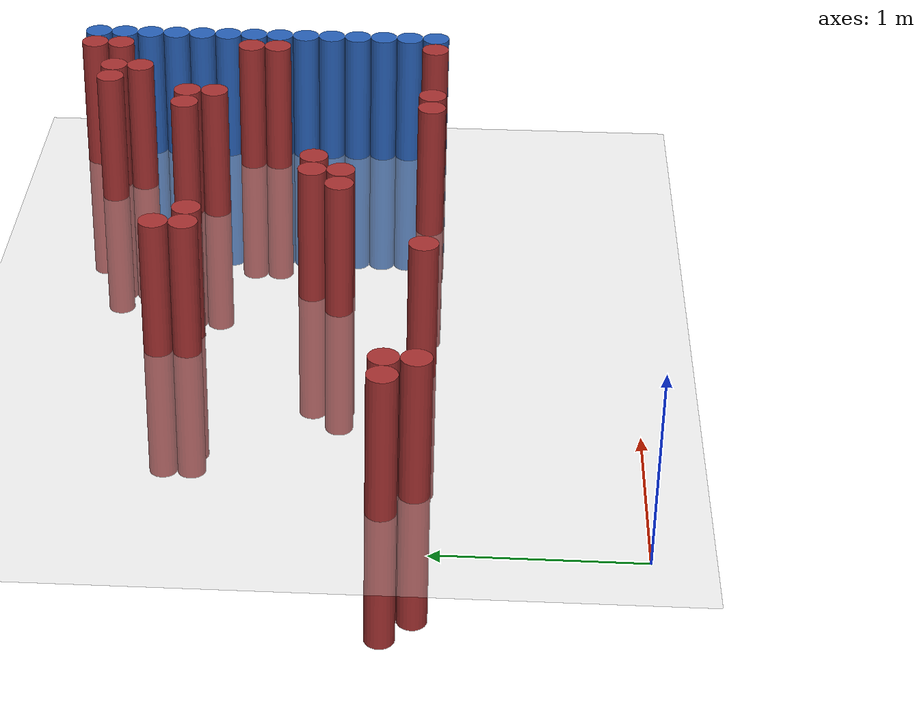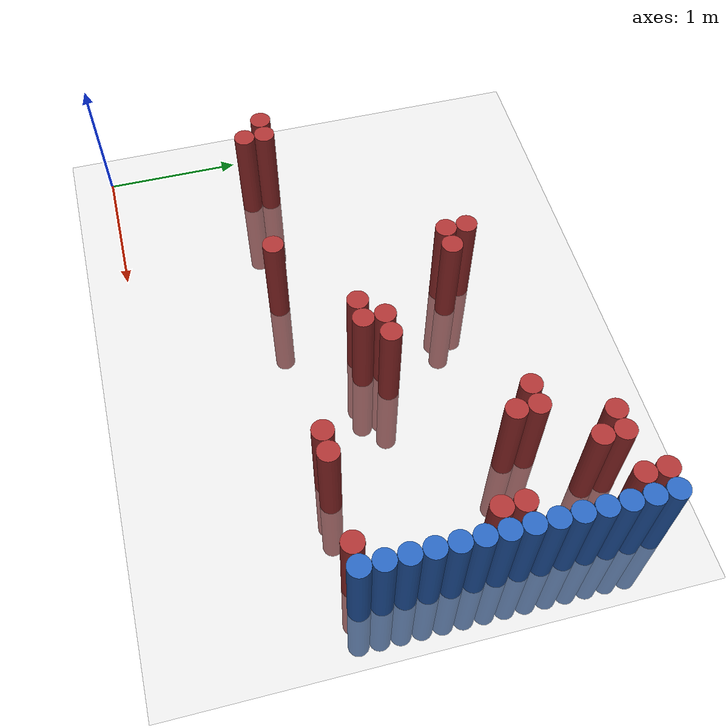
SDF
<sdf version="1.6">
 <world name="default">
  <model name="ground_plane">
   <static>1</static>
   <link name="link">
    <collision name="collision">
     <geometry><plane><normal>0 0 1</normal><size>100 100</size></plane></geometry>
     <surface><friction><ode><mu>100</mu><mu2>50</mu2></ode></friction></surface>
    </collision>
    <visual name="visual">
     <cast_shadows>0</cast_shadows>
     <geometry><plane><normal>0 0 1</normal><size>100 100</size></plane></geometry>
     <material>
      <script><uri>file://media/materials/scripts/gazebo.material</uri><name>Gazebo/Grey</name></script>
     </material>
    </visual>
   </link>
  </model>
  <model name="unit_cylinder_130">
   <static>1</static>
   <pose>3.925000 1.225000 0.000000 0.000000 0.000000 0.000000</pose>
   <link name="link">
    <inertial>
     <mass>1</mass>
     <inertia><ixx>0.145833</ixx><ixy>0</ixy><ixz>0</ixz><iyy>0.145833</iyy><iyz>0</iyz><izz>0.125</izz></inertia>
    </inertial>
    <collision name="collision">
     <geometry><cylinder><radius>0.075000</radius><length>1.5</length></cylinder></geometry>
    </collision>
    <visual name="visual">
     <geometry><cylinder><radius>0.075000</radius><length>1.5</length></cylinder></geometry>
     <material>
      <ambient>0.152000 0.379000 0.720000 1</ambient>
      <diffuse>0.152000 0.379000 0.720000 1</diffuse>
     </material>
     <material>
      <script><name>Gazebo/Grey</name><uri>file://media/materials/scripts/gazebo.material</uri></script>
     </material>
    </visual>
   </link>
  </model>
  <model name="unit_cylinder_132">
   <static>1</static>
   <pose>3.925000 1.375000 0.000000 0.000000 0.000000 0.000000</pose>
   <link name="link">
    <inertial>
     <mass>1</mass>
     <inertia><ixx>0.145833</ixx><ixy>0</ixy><ixz>0</ixz><iyy>0.145833</iyy><iyz>0</iyz><izz>0.125</izz></inertia>
    </inertial>
    <collision name="collision">
     <geometry><cylinder><radius>0.075000</radius><length>1.5</length></cylinder></geometry>
    </collision>
    <visual name="visual">
     <geometry><cylinder><radius>0.075000</radius><length>1.5</length></cylinder></geometry>
     <material>
      <ambient>0.152000 0.379000 0.720000 1</ambient>
      <diffuse>0.152000 0.379000 0.720000 1</diffuse>
     </material>
     <material>
      <script><name>Gazebo/Grey</name><uri>file://media/materials/scripts/gazebo.material</uri></script>
     </material>
    </visual>
   </link>
  </model>
  <model name="unit_cylinder_134">
   <static>1</static>
   <pose>3.925000 1.525000 0.000000 0.000000 0.000000 0.000000</pose>
   <link name="link">
    <inertial>
     <mass>1</mass>
     <inertia><ixx>0.145833</ixx><ixy>0</ixy><ixz>0</ixz><iyy>0.145833</iyy><iyz>0</iyz><izz>0.125</izz></inertia>
    </inertial>
    <collision name="collision">
     <geometry><cylinder><radius>0.075000</radius><length>1.5</length></cylinder></geometry>
    </collision>
    <visual name="visual">
     <geometry><cylinder><radius>0.075000</radius><length>1.5</length></cylinder></geometry>
     <material>
      <ambient>0.152000 0.379000 0.720000 1</ambient>
      <diffuse>0.152000 0.379000 0.720000 1</diffuse>
     </material>
     <material>
      <script><name>Gazebo/Grey</name><uri>file://media/materials/scripts/gazebo.material</uri></script>
     </material>
    </visual>
   </link>
  </model>
  <model name="unit_cylinder_136">
   <static>1</static>
   <pose>3.925000 1.675000 0.000000 0.000000 0.000000 0.000000</pose>
   <link name="link">
    <inertial>
     <mass>1</mass>
     <inertia><ixx>0.145833</ixx><ixy>0</ixy><ixz>0</ixz><iyy>0.145833</iyy><iyz>0</iyz><izz>0.125</izz></inertia>
    </inertial>
    <collision name="collision">
     <geometry><cylinder><radius>0.075000</radius><length>1.5</length></cylinder></geometry>
    </collision>
    <visual name="visual">
     <geometry><cylinder><radius>0.075000</radius><length>1.5</length></cylinder></geometry>
     <material>
      <ambient>0.152000 0.379000 0.720000 1</ambient>
      <diffuse>0.152000 0.379000 0.720000 1</diffuse>
     </material>
     <material>
      <script><name>Gazebo/Grey</name><uri>file://media/materials/scripts/gazebo.material</uri></script>
     </material>
    </visual>
   </link>
  </model>
  <model name="unit_cylinder_138">
   <static>1</static>
   <pose>3.925000 1.825000 0.000000 0.000000 0.000000 0.000000</pose>
   <link name="link">
    <inertial>
     <mass>1</mass>
     <inertia><ixx>0.145833</ixx><ixy>0</ixy><ixz>0</ixz><iyy>0.145833</iyy><iyz>0</iyz><izz>0.125</izz></inertia>
    </inertial>
    <collision name="collision">
     <geometry><cylinder><radius>0.075000</radius><length>1.5</length></cylinder></geometry>
    </collision>
    <visual name="visual">
     <geometry><cylinder><radius>0.075000</radius><length>1.5</length></cylinder></geometry>
     <material>
      <ambient>0.152000 0.379000 0.720000 1</ambient>
      <diffuse>0.152000 0.379000 0.720000 1</diffuse>
     </material>
     <material>
      <script><name>Gazebo/Grey</name><uri>file://media/materials/scripts/gazebo.material</uri></script>
     </material>
    </visual>
   </link>
  </model>
  <model name="unit_cylinder_140">
   <static>1</static>
   <pose>3.925000 1.975000 0.000000 0.000000 0.000000 0.000000</pose>
   <link name="link">
    <inertial>
     <mass>1</mass>
     <inertia><ixx>0.145833</ixx><ixy>0</ixy><ixz>0</ixz><iyy>0.145833</iyy><iyz>0</iyz><izz>0.125</izz></inertia>
    </inertial>
    <collision name="collision">
     <geometry><cylinder><radius>0.075000</radius><length>1.5</length></cylinder></geometry>
    </collision>
    <visual name="visual">
     <geometry><cylinder><radius>0.075000</radius><length>1.5</length></cylinder></geometry>
     <material>
      <ambient>0.152000 0.379000 0.720000 1</ambient>
      <diffuse>0.152000 0.379000 0.720000 1</diffuse>
     </material>
     <material>
      <script><name>Gazebo/Grey</name><uri>file://media/materials/scripts/gazebo.material</uri></script>
     </material>
    </visual>
   </link>
  </model>
  <model name="unit_cylinder_142">
   <static>1</static>
   <pose>3.925000 2.125000 0.000000 0.000000 0.000000 0.000000</pose>
   <link name="link">
    <inertial>
     <mass>1</mass>
     <inertia><ixx>0.145833</ixx><ixy>0</ixy><ixz>0</ixz><iyy>0.145833</iyy><iyz>0</iyz><izz>0.125</izz></inertia>
    </inertial>
    <collision name="collision">
     <geometry><cylinder><radius>0.075000</radius><length>1.5</length></cylinder></geometry>
    </collision>
    <visual name="visual">
     <geometry><cylinder><radius>0.075000</radius><length>1.5</length></cylinder></geometry>
     <material>
      <ambient>0.152000 0.379000 0.720000 1</ambient>
      <diffuse>0.152000 0.379000 0.720000 1</diffuse>
     </material>
     <material>
      <script><name>Gazebo/Grey</name><uri>file://media/materials/scripts/gazebo.material</uri></script>
     </material>
    </visual>
   </link>
  </model>
  <model name="unit_cylinder_144">
   <static>1</static>
   <pose>3.925000 2.275000 0.000000 0.000000 0.000000 0.000000</pose>
   <link name="link">
    <inertial>
     <mass>1</mass>
     <inertia><ixx>0.145833</ixx><ixy>0</ixy><ixz>0</ixz><iyy>0.145833</iyy><iyz>0</iyz><izz>0.125</izz></inertia>
    </inertial>
    <collision name="collision">
     <geometry><cylinder><radius>0.075000</radius><length>1.5</length></cylinder></geometry>
    </collision>
    <visual name="visual">
     <geometry><cylinder><radius>0.075000</radius><length>1.5</length></cylinder></geometry>
     <material>
      <ambient>0.152000 0.379000 0.720000 1</ambient>
      <diffuse>0.152000 0.379000 0.720000 1</diffuse>
     </material>
     <material>
      <script><name>Gazebo/Grey</name><uri>file://media/materials/scripts/gazebo.material</uri></script>
     </material>
    </visual>
   </link>
  </model>
  <model name="unit_cylinder_146">
   <static>1</static>
   <pose>3.925000 2.425000 0.000000 0.000000 0.000000 0.000000</pose>
   <link name="link">
    <inertial>
     <mass>1</mass>
     <inertia><ixx>0.145833</ixx><ixy>0</ixy><ixz>0</ixz><iyy>0.145833</iyy><iyz>0</iyz><izz>0.125</izz></inertia>
    </inertial>
    <collision name="collision">
     <geometry><cylinder><radius>0.075000</radius><length>1.5</length></cylinder></geometry>
    </collision>
    <visual name="visual">
     <geometry><cylinder><radius>0.075000</radius><length>1.5</length></cylinder></geometry>
     <material>
      <ambient>0.152000 0.379000 0.720000 1</ambient>
      <diffuse>0.152000 0.379000 0.720000 1</diffuse>
     </material>
     <material>
      <script><name>Gazebo/Grey</name><uri>file://media/materials/scripts/gazebo.material</uri></script>
     </material>
    </visual>
   </link>
  </model>
  <model name="unit_cylinder_148">
   <static>1</static>
   <pose>3.925000 2.575000 0.000000 0.000000 0.000000 0.000000</pose>
   <link name="link">
    <inertial>
     <mass>1</mass>
     <inertia><ixx>0.145833</ixx><ixy>0</ixy><ixz>0</ixz><iyy>0.145833</iyy><iyz>0</iyz><izz>0.125</izz></inertia>
    </inertial>
    <collision name="collision">
     <geometry><cylinder><radius>0.075000</radius><length>1.5</length></cylinder></geometry>
    </collision>
    <visual name="visual">
     <geometry><cylinder><radius>0.075000</radius><length>1.5</length></cylinder></geometry>
     <material>
      <ambient>0.152000 0.379000 0.720000 1</ambient>
      <diffuse>0.152000 0.379000 0.720000 1</diffuse>
     </material>
     <material>
      <script><name>Gazebo/Grey</name><uri>file://media/materials/scripts/gazebo.material</uri></script>
     </material>
    </visual>
   </link>
  </model>
  <model name="unit_cylinder_150">
   <static>1</static>
   <pose>3.925000 2.725000 0.000000 0.000000 0.000000 0.000000</pose>
   <link name="link">
    <inertial>
     <mass>1</mass>
     <inertia><ixx>0.145833</ixx><ixy>0</ixy><ixz>0</ixz><iyy>0.145833</iyy><iyz>0</iyz><izz>0.125</izz></inertia>
    </inertial>
    <collision name="collision">
     <geometry><cylinder><radius>0.075000</radius><length>1.5</length></cylinder></geometry>
    </collision>
    <visual name="visual">
     <geometry><cylinder><radius>0.075000</radius><length>1.5</length></cylinder></geometry>
     <material>
      <ambient>0.152000 0.379000 0.720000 1</ambient>
      <diffuse>0.152000 0.379000 0.720000 1</diffuse>
     </material>
     <material>
      <script><name>Gazebo/Grey</name><uri>file://media/materials/scripts/gazebo.material</uri></script>
     </material>
    </visual>
   </link>
  </model>
  <model name="unit_cylinder_152">
   <static>1</static>
   <pose>3.925000 2.875000 0.000000 0.000000 0.000000 0.000000</pose>
   <link name="link">
    <inertial>
     <mass>1</mass>
     <inertia><ixx>0.145833</ixx><ixy>0</ixy><ixz>0</ixz><iyy>0.145833</iyy><iyz>0</iyz><izz>0.125</izz></inertia>
    </inertial>
    <collision name="collision">
     <geometry><cylinder><radius>0.075000</radius><length>1.5</length></cylinder></geometry>
    </collision>
    <visual name="visual">
     <geometry><cylinder><radius>0.075000</radius><length>1.5</length></cylinder></geometry>
     <material>
      <ambient>0.152000 0.379000 0.720000 1</ambient>
      <diffuse>0.152000 0.379000 0.720000 1</diffuse>
     </material>
     <material>
      <script><name>Gazebo/Grey</name><uri>file://media/materials/scripts/gazebo.material</uri></script>
     </material>
    </visual>
   </link>
  </model>
  <model name="unit_cylinder_154">
   <static>1</static>
   <pose>3.925000 3.025000 0.000000 0.000000 0.000000 0.000000</pose>
   <link name="link">
    <inertial>
     <mass>1</mass>
     <inertia><ixx>0.145833</ixx><ixy>0</ixy><ixz>0</ixz><iyy>0.145833</iyy><iyz>0</iyz><izz>0.125</izz></inertia>
    </inertial>
    <collision name="collision">
     <geometry><cylinder><radius>0.075000</radius><length>1.5</length></cylinder></geometry>
    </collision>
    <visual name="visual">
     <geometry><cylinder><radius>0.075000</radius><length>1.5</length></cylinder></geometry>
     <material>
      <ambient>0.152000 0.379000 0.720000 1</ambient>
      <diffuse>0.152000 0.379000 0.720000 1</diffuse>
     </material>
     <material>
      <script><name>Gazebo/Grey</name><uri>file://media/materials/scripts/gazebo.material</uri></script>
     </material>
    </visual>
   </link>
  </model>
  <model name="unit_cylinder_358">
   <static>1</static>
   <pose>0.325000 1.225000 0.000000 0.000000 0.000000 0.000000</pose>
   <link name="link">
    <inertial>
     <mass>1</mass>
     <inertia><ixx>0.145833</ixx><ixy>0</ixy><ixz>0</ixz><iyy>0.145833</iyy><iyz>0</iyz><izz>0.125</izz></inertia>
    </inertial>
    <collision name="collision">
     <geometry><cylinder><radius>0.075000</radius><length>1.5</length></cylinder></geometry>
    </collision>
    <visual name="visual">
     <geometry><cylinder><radius>0.075000</radius><length>1.5</length></cylinder></geometry>
     <material>
      <ambient>0.648000 0.192000 0.192000 1</ambient>
      <diffuse>0.648000 0.192000 0.192000 1</diffuse>
     </material>
     <material>
      <script><name>Gazebo/Grey</name><uri>file://media/materials/scripts/gazebo.material</uri></script>
     </material>
    </visual>
   </link>
  </model>
  <model name="unit_cylinder_361">
   <static>1</static>
   <pose>0.475000 1.075000 0.000000 0.000000 0.000000 0.000000</pose>
   <link name="link">
    <inertial>
     <mass>1</mass>
     <inertia><ixx>0.145833</ixx><ixy>0</ixy><ixz>0</ixz><iyy>0.145833</iyy><iyz>0</iyz><izz>0.125</izz></inertia>
    </inertial>
    <collision name="collision">
     <geometry><cylinder><radius>0.075000</radius><length>1.5</length></cylinder></geometry>
    </collision>
    <visual name="visual">
     <geometry><cylinder><radius>0.075000</radius><length>1.5</length></cylinder></geometry>
     <material>
      <ambient>0.648000 0.192000 0.192000 1</ambient>
      <diffuse>0.648000 0.192000 0.192000 1</diffuse>
     </material>
     <material>
      <script><name>Gazebo/Grey</name><uri>file://media/materials/scripts/gazebo.material</uri></script>
     </material>
    </visual>
   </link>
  </model>
  <model name="unit_cylinder_362">
   <static>1</static>
   <pose>0.475000 1.225000 0.000000 0.000000 0.000000 0.000000</pose>
   <link name="link">
    <inertial>
     <mass>1</mass>
     <inertia><ixx>0.145833</ixx><ixy>0</ixy><ixz>0</ixz><iyy>0.145833</iyy><iyz>0</iyz><izz>0.125</izz></inertia>
    </inertial>
    <collision name="collision">
     <geometry><cylinder><radius>0.075000</radius><length>1.5</length></cylinder></geometry>
    </collision>
    <visual name="visual">
     <geometry><cylinder><radius>0.075000</radius><length>1.5</length></cylinder></geometry>
     <material>
      <ambient>0.648000 0.192000 0.192000 1</ambient>
      <diffuse>0.648000 0.192000 0.192000 1</diffuse>
     </material>
     <material>
      <script><name>Gazebo/Grey</name><uri>file://media/materials/scripts/gazebo.material</uri></script>
     </material>
    </visual>
   </link>
  </model>
  <model name="unit_cylinder_374">
   <static>1</static>
   <pose>1.525000 1.075000 0.000000 0.000000 0.000000 0.000000</pose>
   <link name="link">
    <inertial>
     <mass>1</mass>
     <inertia><ixx>0.145833</ixx><ixy>0</ixy><ixz>0</ixz><iyy>0.145833</iyy><iyz>0</iyz><izz>0.125</izz></inertia>
    </inertial>
    <collision name="collision">
     <geometry><cylinder><radius>0.075000</radius><length>1.5</length></cylinder></geometry>
    </collision>
    <visual name="visual">
     <geometry><cylinder><radius>0.075000</radius><length>1.5</length></cylinder></geometry>
     <material>
      <ambient>0.648000 0.192000 0.192000 1</ambient>
      <diffuse>0.648000 0.192000 0.192000 1</diffuse>
     </material>
     <material>
      <script><name>Gazebo/Grey</name><uri>file://media/materials/scripts/gazebo.material</uri></script>
     </material>
    </visual>
   </link>
  </model>
  <model name="unit_cylinder_378">
   <static>1</static>
   <pose>1.675000 2.275000 0.000000 0.000000 0.000000 0.000000</pose>
   <link name="link">
    <inertial>
     <mass>1</mass>
     <inertia><ixx>0.145833</ixx><ixy>0</ixy><ixz>0</ixz><iyy>0.145833</iyy><iyz>0</iyz><izz>0.125</izz></inertia>
    </inertial>
    <collision name="collision">
     <geometry><cylinder><radius>0.075000</radius><length>1.5</length></cylinder></geometry>
    </collision>
    <visual name="visual">
     <geometry><cylinder><radius>0.075000</radius><length>1.5</length></cylinder></geometry>
     <material>
      <ambient>0.648000 0.192000 0.192000 1</ambient>
      <diffuse>0.648000 0.192000 0.192000 1</diffuse>
     </material>
     <material>
      <script><name>Gazebo/Grey</name><uri>file://media/materials/scripts/gazebo.material</uri></script>
     </material>
    </visual>
   </link>
  </model>
  <model name="unit_cylinder_379">
   <static>1</static>
   <pose>1.675000 2.425000 0.000000 0.000000 0.000000 0.000000</pose>
   <link name="link">
    <inertial>
     <mass>1</mass>
     <inertia><ixx>0.145833</ixx><ixy>0</ixy><ixz>0</ixz><iyy>0.145833</iyy><iyz>0</iyz><izz>0.125</izz></inertia>
    </inertial>
    <collision name="collision">
     <geometry><cylinder><radius>0.075000</radius><length>1.5</length></cylinder></geometry>
    </collision>
    <visual name="visual">
     <geometry><cylinder><radius>0.075000</radius><length>1.5</length></cylinder></geometry>
     <material>
      <ambient>0.648000 0.192000 0.192000 1</ambient>
      <diffuse>0.648000 0.192000 0.192000 1</diffuse>
     </material>
     <material>
      <script><name>Gazebo/Grey</name><uri>file://media/materials/scripts/gazebo.material</uri></script>
     </material>
    </visual>
   </link>
  </model>
  <model name="unit_cylinder_381">
   <static>1</static>
   <pose>1.825000 2.275000 0.000000 0.000000 0.000000 0.000000</pose>
   <link name="link">
    <inertial>
     <mass>1</mass>
     <inertia><ixx>0.145833</ixx><ixy>0</ixy><ixz>0</ixz><iyy>0.145833</iyy><iyz>0</iyz><izz>0.125</izz></inertia>
    </inertial>
    <collision name="collision">
     <geometry><cylinder><radius>0.075000</radius><length>1.5</length></cylinder></geometry>
    </collision>
    <visual name="visual">
     <geometry><cylinder><radius>0.075000</radius><length>1.5</length></cylinder></geometry>
     <material>
      <ambient>0.648000 0.192000 0.192000 1</ambient>
      <diffuse>0.648000 0.192000 0.192000 1</diffuse>
     </material>
     <material>
      <script><name>Gazebo/Grey</name><uri>file://media/materials/scripts/gazebo.material</uri></script>
     </material>
    </visual>
   </link>
  </model>
  <model name="unit_cylinder_382">
   <static>1</static>
   <pose>2.125000 1.525000 0.000000 0.000000 0.000000 0.000000</pose>
   <link name="link">
    <inertial>
     <mass>1</mass>
     <inertia><ixx>0.145833</ixx><ixy>0</ixy><ixz>0</ixz><iyy>0.145833</iyy><iyz>0</iyz><izz>0.125</izz></inertia>
    </inertial>
    <collision name="collision">
     <geometry><cylinder><radius>0.075000</radius><length>1.5</length></cylinder></geometry>
    </collision>
    <visual name="visual">
     <geometry><cylinder><radius>0.075000</radius><length>1.5</length></cylinder></geometry>
     <material>
      <ambient>0.648000 0.192000 0.192000 1</ambient>
      <diffuse>0.648000 0.192000 0.192000 1</diffuse>
     </material>
     <material>
      <script><name>Gazebo/Grey</name><uri>file://media/materials/scripts/gazebo.material</uri></script>
     </material>
    </visual>
   </link>
  </model>
  <model name="unit_cylinder_384">
   <static>1</static>
   <pose>2.275000 1.525000 0.000000 0.000000 0.000000 0.000000</pose>
   <link name="link">
    <inertial>
     <mass>1</mass>
     <inertia><ixx>0.145833</ixx><ixy>0</ixy><ixz>0</ixz><iyy>0.145833</iyy><iyz>0</iyz><izz>0.125</izz></inertia>
    </inertial>
    <collision name="collision">
     <geometry><cylinder><radius>0.075000</radius><length>1.5</length></cylinder></geometry>
    </collision>
    <visual name="visual">
     <geometry><cylinder><radius>0.075000</radius><length>1.5</length></cylinder></geometry>
     <material>
      <ambient>0.648000 0.192000 0.192000 1</ambient>
      <diffuse>0.648000 0.192000 0.192000 1</diffuse>
     </material>
     <material>
      <script><name>Gazebo/Grey</name><uri>file://media/materials/scripts/gazebo.material</uri></script>
     </material>
    </visual>
   </link>
  </model>
  <model name="unit_cylinder_385">
   <static>1</static>
   <pose>2.275000 1.675000 0.000000 0.000000 0.000000 0.000000</pose>
   <link name="link">
    <inertial>
     <mass>1</mass>
     <inertia><ixx>0.145833</ixx><ixy>0</ixy><ixz>0</ixz><iyy>0.145833</iyy><iyz>0</iyz><izz>0.125</izz></inertia>
    </inertial>
    <collision name="collision">
     <geometry><cylinder><radius>0.075000</radius><length>1.5</length></cylinder></geometry>
    </collision>
    <visual name="visual">
     <geometry><cylinder><radius>0.075000</radius><length>1.5</length></cylinder></geometry>
     <material>
      <ambient>0.648000 0.192000 0.192000 1</ambient>
      <diffuse>0.648000 0.192000 0.192000 1</diffuse>
     </material>
     <material>
      <script><name>Gazebo/Grey</name><uri>file://media/materials/scripts/gazebo.material</uri></script>
     </material>
    </visual>
   </link>
  </model>
  <model name="unit_cylinder_389">
   <static>1</static>
   <pose>2.425000 1.675000 0.000000 0.000000 0.000000 0.000000</pose>
   <link name="link">
    <inertial>
     <mass>1</mass>
     <inertia><ixx>0.145833</ixx><ixy>0</ixy><ixz>0</ixz><iyy>0.145833</iyy><iyz>0</iyz><izz>0.125</izz></inertia>
    </inertial>
    <collision name="collision">
     <geometry><cylinder><radius>0.075000</radius><length>1.5</length></cylinder></geometry>
    </collision>
    <visual name="visual">
     <geometry><cylinder><radius>0.075000</radius><length>1.5</length></cylinder></geometry>
     <material>
      <ambient>0.648000 0.192000 0.192000 1</ambient>
      <diffuse>0.648000 0.192000 0.192000 1</diffuse>
     </material>
     <material>
      <script><name>Gazebo/Grey</name><uri>file://media/materials/scripts/gazebo.material</uri></script>
     </material>
    </visual>
   </link>
  </model>
  <model name="unit_cylinder_398">
   <static>1</static>
   <pose>3.025000 1.075000 0.000000 0.000000 0.000000 0.000000</pose>
   <link name="link">
    <inertial>
     <mass>1</mass>
     <inertia><ixx>0.145833</ixx><ixy>0</ixy><ixz>0</ixz><iyy>0.145833</iyy><iyz>0</iyz><izz>0.125</izz></inertia>
    </inertial>
    <collision name="collision">
     <geometry><cylinder><radius>0.075000</radius><length>1.5</length></cylinder></geometry>
    </collision>
    <visual name="visual">
     <geometry><cylinder><radius>0.075000</radius><length>1.5</length></cylinder></geometry>
     <material>
      <ambient>0.648000 0.192000 0.192000 1</ambient>
      <diffuse>0.648000 0.192000 0.192000 1</diffuse>
     </material>
     <material>
      <script><name>Gazebo/Grey</name><uri>file://media/materials/scripts/gazebo.material</uri></script>
     </material>
    </visual>
   </link>
  </model>
  <model name="unit_cylinder_399">
   <static>1</static>
   <pose>3.025000 2.425000 0.000000 0.000000 0.000000 0.000000</pose>
   <link name="link">
    <inertial>
     <mass>1</mass>
     <inertia><ixx>0.145833</ixx><ixy>0</ixy><ixz>0</ixz><iyy>0.145833</iyy><iyz>0</iyz><izz>0.125</izz></inertia>
    </inertial>
    <collision name="collision">
     <geometry><cylinder><radius>0.075000</radius><length>1.5</length></cylinder></geometry>
    </collision>
    <visual name="visual">
     <geometry><cylinder><radius>0.075000</radius><length>1.5</length></cylinder></geometry>
     <material>
      <ambient>0.648000 0.192000 0.192000 1</ambient>
      <diffuse>0.648000 0.192000 0.192000 1</diffuse>
     </material>
     <material>
      <script><name>Gazebo/Grey</name><uri>file://media/materials/scripts/gazebo.material</uri></script>
     </material>
    </visual>
   </link>
  </model>
  <model name="unit_cylinder_403">
   <static>1</static>
   <pose>3.175000 1.075000 0.000000 0.000000 0.000000 0.000000</pose>
   <link name="link">
    <inertial>
     <mass>1</mass>
     <inertia><ixx>0.145833</ixx><ixy>0</ixy><ixz>0</ixz><iyy>0.145833</iyy><iyz>0</iyz><izz>0.125</izz></inertia>
    </inertial>
    <collision name="collision">
     <geometry><cylinder><radius>0.075000</radius><length>1.5</length></cylinder></geometry>
    </collision>
    <visual name="visual">
     <geometry><cylinder><radius>0.075000</radius><length>1.5</length></cylinder></geometry>
     <material>
      <ambient>0.648000 0.192000 0.192000 1</ambient>
      <diffuse>0.648000 0.192000 0.192000 1</diffuse>
     </material>
     <material>
      <script><name>Gazebo/Grey</name><uri>file://media/materials/scripts/gazebo.material</uri></script>
     </material>
    </visual>
   </link>
  </model>
  <model name="unit_cylinder_404">
   <static>1</static>
   <pose>3.175000 2.275000 0.000000 0.000000 0.000000 0.000000</pose>
   <link name="link">
    <inertial>
     <mass>1</mass>
     <inertia><ixx>0.145833</ixx><ixy>0</ixy><ixz>0</ixz><iyy>0.145833</iyy><iyz>0</iyz><izz>0.125</izz></inertia>
    </inertial>
    <collision name="collision">
     <geometry><cylinder><radius>0.075000</radius><length>1.5</length></cylinder></geometry>
    </collision>
    <visual name="visual">
     <geometry><cylinder><radius>0.075000</radius><length>1.5</length></cylinder></geometry>
     <material>
      <ambient>0.648000 0.192000 0.192000 1</ambient>
      <diffuse>0.648000 0.192000 0.192000 1</diffuse>
     </material>
     <material>
      <script><name>Gazebo/Grey</name><uri>file://media/materials/scripts/gazebo.material</uri></script>
     </material>
    </visual>
   </link>
  </model>
  <model name="unit_cylinder_405">
   <static>1</static>
   <pose>3.175000 2.425000 0.000000 0.000000 0.000000 0.000000</pose>
   <link name="link">
    <inertial>
     <mass>1</mass>
     <inertia><ixx>0.145833</ixx><ixy>0</ixy><ixz>0</ixz><iyy>0.145833</iyy><iyz>0</iyz><izz>0.125</izz></inertia>
    </inertial>
    <collision name="collision">
     <geometry><cylinder><radius>0.075000</radius><length>1.5</length></cylinder></geometry>
    </collision>
    <visual name="visual">
     <geometry><cylinder><radius>0.075000</radius><length>1.5</length></cylinder></geometry>
     <material>
      <ambient>0.648000 0.192000 0.192000 1</ambient>
      <diffuse>0.648000 0.192000 0.192000 1</diffuse>
     </material>
     <material>
      <script><name>Gazebo/Grey</name><uri>file://media/materials/scripts/gazebo.material</uri></script>
     </material>
    </visual>
   </link>
  </model>
  <model name="unit_cylinder_408">
   <static>1</static>
   <pose>3.325000 2.875000 0.000000 0.000000 0.000000 0.000000</pose>
   <link name="link">
    <inertial>
     <mass>1</mass>
     <inertia><ixx>0.145833</ixx><ixy>0</ixy><ixz>0</ixz><iyy>0.145833</iyy><iyz>0</iyz><izz>0.125</izz></inertia>
    </inertial>
    <collision name="collision">
     <geometry><cylinder><radius>0.075000</radius><length>1.5</length></cylinder></geometry>
    </collision>
    <visual name="visual">
     <geometry><cylinder><radius>0.075000</radius><length>1.5</length></cylinder></geometry>
     <material>
      <ambient>0.648000 0.192000 0.192000 1</ambient>
      <diffuse>0.648000 0.192000 0.192000 1</diffuse>
     </material>
     <material>
      <script><name>Gazebo/Grey</name><uri>file://media/materials/scripts/gazebo.material</uri></script>
     </material>
    </visual>
   </link>
  </model>
  <model name="unit_cylinder_413">
   <static>1</static>
   <pose>3.475000 2.725000 0.000000 0.000000 0.000000 0.000000</pose>
   <link name="link">
    <inertial>
     <mass>1</mass>
     <inertia><ixx>0.145833</ixx><ixy>0</ixy><ixz>0</ixz><iyy>0.145833</iyy><iyz>0</iyz><izz>0.125</izz></inertia>
    </inertial>
    <collision name="collision">
     <geometry><cylinder><radius>0.075000</radius><length>1.5</length></cylinder></geometry>
    </collision>
    <visual name="visual">
     <geometry><cylinder><radius>0.075000</radius><length>1.5</length></cylinder></geometry>
     <material>
      <ambient>0.648000 0.192000 0.192000 1</ambient>
      <diffuse>0.648000 0.192000 0.192000 1</diffuse>
     </material>
     <material>
      <script><name>Gazebo/Grey</name><uri>file://media/materials/scripts/gazebo.material</uri></script>
     </material>
    </visual>
   </link>
  </model>
  <model name="unit_cylinder_414">
   <static>1</static>
   <pose>3.475000 2.875000 0.000000 0.000000 0.000000 0.000000</pose>
   <link name="link">
    <inertial>
     <mass>1</mass>
     <inertia><ixx>0.145833</ixx><ixy>0</ixy><ixz>0</ixz><iyy>0.145833</iyy><iyz>0</iyz><izz>0.125</izz></inertia>
    </inertial>
    <collision name="collision">
     <geometry><cylinder><radius>0.075000</radius><length>1.5</length></cylinder></geometry>
    </collision>
    <visual name="visual">
     <geometry><cylinder><radius>0.075000</radius><length>1.5</length></cylinder></geometry>
     <material>
      <ambient>0.648000 0.192000 0.192000 1</ambient>
      <diffuse>0.648000 0.192000 0.192000 1</diffuse>
     </material>
     <material>
      <script><name>Gazebo/Grey</name><uri>file://media/materials/scripts/gazebo.material</uri></script>
     </material>
    </visual>
   </link>
  </model>
  <model name="unit_cylinder_431">
   <static>1</static>
   <pose>3.775000 1.075000 0.000000 0.000000 0.000000 0.000000</pose>
   <link name="link">
    <inertial>
     <mass>1</mass>
     <inertia><ixx>0.145833</ixx><ixy>0</ixy><ixz>0</ixz><iyy>0.145833</iyy><iyz>0</iyz><izz>0.125</izz></inertia>
    </inertial>
    <collision name="collision">
     <geometry><cylinder><radius>0.075000</radius><length>1.5</length></cylinder></geometry>
    </collision>
    <visual name="visual">
     <geometry><cylinder><radius>0.075000</radius><length>1.5</length></cylinder></geometry>
     <material>
      <ambient>0.648000 0.192000 0.192000 1</ambient>
      <diffuse>0.648000 0.192000 0.192000 1</diffuse>
     </material>
     <material>
      <script><name>Gazebo/Grey</name><uri>file://media/materials/scripts/gazebo.material</uri></script>
     </material>
    </visual>
   </link>
  </model>
  <model name="unit_cylinder_432">
   <static>1</static>
   <pose>3.775000 1.975000 0.000000 0.000000 0.000000 0.000000</pose>
   <link name="link">
    <inertial>
     <mass>1</mass>
     <inertia><ixx>0.145833</ixx><ixy>0</ixy><ixz>0</ixz><iyy>0.145833</iyy><iyz>0</iyz><izz>0.125</izz></inertia>
    </inertial>
    <collision name="collision">
     <geometry><cylinder><radius>0.075000</radius><length>1.5</length></cylinder></geometry>
    </collision>
    <visual name="visual">
     <geometry><cylinder><radius>0.075000</radius><length>1.5</length></cylinder></geometry>
     <material>
      <ambient>0.648000 0.192000 0.192000 1</ambient>
      <diffuse>0.648000 0.192000 0.192000 1</diffuse>
     </material>
     <material>
      <script><name>Gazebo/Grey</name><uri>file://media/materials/scripts/gazebo.material</uri></script>
     </material>
    </visual>
   </link>
  </model>
  <model name="unit_cylinder_433">
   <static>1</static>
   <pose>3.775000 2.125000 0.000000 0.000000 0.000000 0.000000</pose>
   <link name="link">
    <inertial>
     <mass>1</mass>
     <inertia><ixx>0.145833</ixx><ixy>0</ixy><ixz>0</ixz><iyy>0.145833</iyy><iyz>0</iyz><izz>0.125</izz></inertia>
    </inertial>
    <collision name="collision">
     <geometry><cylinder><radius>0.075000</radius><length>1.5</length></cylinder></geometry>
    </collision>
    <visual name="visual">
     <geometry><cylinder><radius>0.075000</radius><length>1.5</length></cylinder></geometry>
     <material>
      <ambient>0.648000 0.192000 0.192000 1</ambient>
      <diffuse>0.648000 0.192000 0.192000 1</diffuse>
     </material>
     <material>
      <script><name>Gazebo/Grey</name><uri>file://media/materials/scripts/gazebo.material</uri></script>
     </material>
    </visual>
   </link>
  </model>
  <model name="unit_cylinder_434">
   <static>1</static>
   <pose>3.775000 2.875000 0.000000 0.000000 0.000000 0.000000</pose>
   <link name="link">
    <inertial>
     <mass>1</mass>
     <inertia><ixx>0.145833</ixx><ixy>0</ixy><ixz>0</ixz><iyy>0.145833</iyy><iyz>0</iyz><izz>0.125</izz></inertia>
    </inertial>
    <collision name="collision">
     <geometry><cylinder><radius>0.075000</radius><length>1.5</length></cylinder></geometry>
    </collision>
    <visual name="visual">
     <geometry><cylinder><radius>0.075000</radius><length>1.5</length></cylinder></geometry>
     <material>
      <ambient>0.648000 0.192000 0.192000 1</ambient>
      <diffuse>0.648000 0.192000 0.192000 1</diffuse>
     </material>
     <material>
      <script><name>Gazebo/Grey</name><uri>file://media/materials/scripts/gazebo.material</uri></script>
     </material>
    </visual>
   </link>
  </model>
  <model name="unit_cylinder_435">
   <static>1</static>
   <pose>3.775000 3.025000 0.000000 0.000000 0.000000 0.000000</pose>
   <link name="link">
    <inertial>
     <mass>1</mass>
     <inertia><ixx>0.145833</ixx><ixy>0</ixy><ixz>0</ixz><iyy>0.145833</iyy><iyz>0</iyz><izz>0.125</izz></inertia>
    </inertial>
    <collision name="collision">
     <geometry><cylinder><radius>0.075000</radius><length>1.5</length></cylinder></geometry>
    </collision>
    <visual name="visual">
     <geometry><cylinder><radius>0.075000</radius><length>1.5</length></cylinder></geometry>
     <material>
      <ambient>0.648000 0.192000 0.192000 1</ambient>
      <diffuse>0.648000 0.192000 0.192000 1</diffuse>
     </material>
     <material>
      <script><name>Gazebo/Grey</name><uri>file://media/materials/scripts/gazebo.material</uri></script>
     </material>
    </visual>
   </link>
  </model>
  <model name="unit_cylinder_467">
   <static>1</static>
   <pose>3.925000 1.075000 0.000000 0.000000 0.000000 0.000000</pose>
   <link name="link">
    <inertial>
     <mass>1</mass>
     <inertia><ixx>0.145833</ixx><ixy>0</ixy><ixz>0</ixz><iyy>0.145833</iyy><iyz>0</iyz><izz>0.125</izz></inertia>
    </inertial>
    <collision name="collision">
     <geometry><cylinder><radius>0.075000</radius><length>1.5</length></cylinder></geometry>
    </collision>
    <visual name="visual">
     <geometry><cylinder><radius>0.075000</radius><length>1.5</length></cylinder></geometry>
     <material>
      <ambient>0.152000 0.379000 0.720000 1</ambient>
      <diffuse>0.152000 0.379000 0.720000 1</diffuse>
     </material>
     <material>
      <script><name>Gazebo/Grey</name><uri>file://media/materials/scripts/gazebo.material</uri></script>
     </material>
    </visual>
   </link>
  </model>
  <model name="unit_cylinder_468">
   <static>1</static>
   <pose>3.925000 1.225000 0.000000 0.000000 0.000000 0.000000</pose>
   <link name="link">
    <inertial>
     <mass>1</mass>
     <inertia><ixx>0.145833</ixx><ixy>0</ixy><ixz>0</ixz><iyy>0.145833</iyy><iyz>0</iyz><izz>0.125</izz></inertia>
    </inertial>
    <collision name="collision">
     <geometry><cylinder><radius>0.075000</radius><length>1.5</length></cylinder></geometry>
    </collision>
    <visual name="visual">
     <geometry><cylinder><radius>0.075000</radius><length>1.5</length></cylinder></geometry>
     <material>
      <ambient>0.152000 0.379000 0.720000 1</ambient>
      <diffuse>0.152000 0.379000 0.720000 1</diffuse>
     </material>
     <material>
      <script><name>Gazebo/Grey</name><uri>file://media/materials/scripts/gazebo.material</uri></script>
     </material>
    </visual>
   </link>
  </model>
  <model name="unit_cylinder_469">
   <static>1</static>
   <pose>3.925000 1.375000 0.000000 0.000000 0.000000 0.000000</pose>
   <link name="link">
    <inertial>
     <mass>1</mass>
     <inertia><ixx>0.145833</ixx><ixy>0</ixy><ixz>0</ixz><iyy>0.145833</iyy><iyz>0</iyz><izz>0.125</izz></inertia>
    </inertial>
    <collision name="collision">
     <geometry><cylinder><radius>0.075000</radius><length>1.5</length></cylinder></geometry>
    </collision>
    <visual name="visual">
     <geometry><cylinder><radius>0.075000</radius><length>1.5</length></cylinder></geometry>
     <material>
      <ambient>0.152000 0.379000 0.720000 1</ambient>
      <diffuse>0.152000 0.379000 0.720000 1</diffuse>
     </material>
     <material>
      <script><name>Gazebo/Grey</name><uri>file://media/materials/scripts/gazebo.material</uri></script>
     </material>
    </visual>
   </link>
  </model>
  <model name="unit_cylinder_470">
   <static>1</static>
   <pose>3.925000 1.525000 0.000000 0.000000 0.000000 0.000000</pose>
   <link name="link">
    <inertial>
     <mass>1</mass>
     <inertia><ixx>0.145833</ixx><ixy>0</ixy><ixz>0</ixz><iyy>0.145833</iyy><iyz>0</iyz><izz>0.125</izz></inertia>
    </inertial>
    <collision name="collision">
     <geometry><cylinder><radius>0.075000</radius><length>1.5</length></cylinder></geometry>
    </collision>
    <visual name="visual">
     <geometry><cylinder><radius>0.075000</radius><length>1.5</length></cylinder></geometry>
     <material>
      <ambient>0.152000 0.379000 0.720000 1</ambient>
      <diffuse>0.152000 0.379000 0.720000 1</diffuse>
     </material>
     <material>
      <script><name>Gazebo/Grey</name><uri>file://media/materials/scripts/gazebo.material</uri></script>
     </material>
    </visual>
   </link>
  </model>
  <model name="unit_cylinder_471">
   <static>1</static>
   <pose>3.925000 1.675000 0.000000 0.000000 0.000000 0.000000</pose>
   <link name="link">
    <inertial>
     <mass>1</mass>
     <inertia><ixx>0.145833</ixx><ixy>0</ixy><ixz>0</ixz><iyy>0.145833</iyy><iyz>0</iyz><izz>0.125</izz></inertia>
    </inertial>
    <collision name="collision">
     <geometry><cylinder><radius>0.075000</radius><length>1.5</length></cylinder></geometry>
    </collision>
    <visual name="visual">
     <geometry><cylinder><radius>0.075000</radius><length>1.5</length></cylinder></geometry>
     <material>
      <ambient>0.152000 0.379000 0.720000 1</ambient>
      <diffuse>0.152000 0.379000 0.720000 1</diffuse>
     </material>
     <material>
      <script><name>Gazebo/Grey</name><uri>file://media/materials/scripts/gazebo.material</uri></script>
     </material>
    </visual>
   </link>
  </model>
  <model name="unit_cylinder_472">
   <static>1</static>
   <pose>3.925000 1.825000 0.000000 0.000000 0.000000 0.000000</pose>
   <link name="link">
    <inertial>
     <mass>1</mass>
     <inertia><ixx>0.145833</ixx><ixy>0</ixy><ixz>0</ixz><iyy>0.145833</iyy><iyz>0</iyz><izz>0.125</izz></inertia>
    </inertial>
    <collision name="collision">
     <geometry><cylinder><radius>0.075000</radius><length>1.5</length></cylinder></geometry>
    </collision>
    <visual name="visual">
     <geometry><cylinder><radius>0.075000</radius><length>1.5</length></cylinder></geometry>
     <material>
      <ambient>0.152000 0.379000 0.720000 1</ambient>
      <diffuse>0.152000 0.379000 0.720000 1</diffuse>
     </material>
     <material>
      <script><name>Gazebo/Grey</name><uri>file://media/materials/scripts/gazebo.material</uri></script>
     </material>
    </visual>
   </link>
  </model>
  <model name="unit_cylinder_473">
   <static>1</static>
   <pose>3.925000 1.975000 0.000000 0.000000 0.000000 0.000000</pose>
   <link name="link">
    <inertial>
     <mass>1</mass>
     <inertia><ixx>0.145833</ixx><ixy>0</ixy><ixz>0</ixz><iyy>0.145833</iyy><iyz>0</iyz><izz>0.125</izz></inertia>
    </inertial>
    <collision name="collision">
     <geometry><cylinder><radius>0.075000</radius><length>1.5</length></cylinder></geometry>
    </collision>
    <visual name="visual">
     <geometry><cylinder><radius>0.075000</radius><length>1.5</length></cylinder></geometry>
     <material>
      <ambient>0.152000 0.379000 0.720000 1</ambient>
      <diffuse>0.152000 0.379000 0.720000 1</diffuse>
     </material>
     <material>
      <script><name>Gazebo/Grey</name><uri>file://media/materials/scripts/gazebo.material</uri></script>
     </material>
    </visual>
   </link>
  </model>
  <model name="unit_cylinder_474">
   <static>1</static>
   <pose>3.925000 2.125000 0.000000 0.000000 0.000000 0.000000</pose>
   <link name="link">
    <inertial>
     <mass>1</mass>
     <inertia><ixx>0.145833</ixx><ixy>0</ixy><ixz>0</ixz><iyy>0.145833</iyy><iyz>0</iyz><izz>0.125</izz></inertia>
    </inertial>
    <collision name="collision">
     <geometry><cylinder><radius>0.075000</radius><length>1.5</length></cylinder></geometry>
    </collision>
    <visual name="visual">
     <geometry><cylinder><radius>0.075000</radius><length>1.5</length></cylinder></geometry>
     <material>
      <ambient>0.152000 0.379000 0.720000 1</ambient>
      <diffuse>0.152000 0.379000 0.720000 1</diffuse>
     </material>
     <material>
      <script><name>Gazebo/Grey</name><uri>file://media/materials/scripts/gazebo.material</uri></script>
     </material>
    </visual>
   </link>
  </model>
  <model name="unit_cylinder_475">
   <static>1</static>
   <pose>3.925000 2.275000 0.000000 0.000000 0.000000 0.000000</pose>
   <link name="link">
    <inertial>
     <mass>1</mass>
     <inertia><ixx>0.145833</ixx><ixy>0</ixy><ixz>0</ixz><iyy>0.145833</iyy><iyz>0</iyz><izz>0.125</izz></inertia>
    </inertial>
    <collision name="collision">
     <geometry><cylinder><radius>0.075000</radius><length>1.5</length></cylinder></geometry>
    </collision>
    <visual name="visual">
     <geometry><cylinder><radius>0.075000</radius><length>1.5</length></cylinder></geometry>
     <material>
      <ambient>0.152000 0.379000 0.720000 1</ambient>
      <diffuse>0.152000 0.379000 0.720000 1</diffuse>
     </material>
     <material>
      <script><name>Gazebo/Grey</name><uri>file://media/materials/scripts/gazebo.material</uri></script>
     </material>
    </visual>
   </link>
  </model>
  <model name="unit_cylinder_476">
   <static>1</static>
   <pose>3.925000 2.425000 0.000000 0.000000 0.000000 0.000000</pose>
   <link name="link">
    <inertial>
     <mass>1</mass>
     <inertia><ixx>0.145833</ixx><ixy>0</ixy><ixz>0</ixz><iyy>0.145833</iyy><iyz>0</iyz><izz>0.125</izz></inertia>
    </inertial>
    <collision name="collision">
     <geometry><cylinder><radius>0.075000</radius><length>1.5</length></cylinder></geometry>
    </collision>
    <visual name="visual">
     <geometry><cylinder><radius>0.075000</radius><length>1.5</length></cylinder></geometry>
     <material>
      <ambient>0.152000 0.379000 0.720000 1</ambient>
      <diffuse>0.152000 0.379000 0.720000 1</diffuse>
     </material>
     <material>
      <script><name>Gazebo/Grey</name><uri>file://media/materials/scripts/gazebo.material</uri></script>
     </material>
    </visual>
   </link>
  </model>
  <model name="unit_cylinder_477">
   <static>1</static>
   <pose>3.925000 2.575000 0.000000 0.000000 0.000000 0.000000</pose>
   <link name="link">
    <inertial>
     <mass>1</mass>
     <inertia><ixx>0.145833</ixx><ixy>0</ixy><ixz>0</ixz><iyy>0.145833</iyy><iyz>0</iyz><izz>0.125</izz></inertia>
    </inertial>
    <collision name="collision">
     <geometry><cylinder><radius>0.075000</radius><length>1.5</length></cylinder></geometry>
    </collision>
    <visual name="visual">
     <geometry><cylinder><radius>0.075000</radius><length>1.5</length></cylinder></geometry>
     <material>
      <ambient>0.152000 0.379000 0.720000 1</ambient>
      <diffuse>0.152000 0.379000 0.720000 1</diffuse>
     </material>
     <material>
      <script><name>Gazebo/Grey</name><uri>file://media/materials/scripts/gazebo.material</uri></script>
     </material>
    </visual>
   </link>
  </model>
  <model name="unit_cylinder_478">
   <static>1</static>
   <pose>3.925000 2.725000 0.000000 0.000000 0.000000 0.000000</pose>
   <link name="link">
    <inertial>
     <mass>1</mass>
     <inertia><ixx>0.145833</ixx><ixy>0</ixy><ixz>0</ixz><iyy>0.145833</iyy><iyz>0</iyz><izz>0.125</izz></inertia>
    </inertial>
    <collision name="collision">
     <geometry><cylinder><radius>0.075000</radius><length>1.5</length></cylinder></geometry>
    </collision>
    <visual name="visual">
     <geometry><cylinder><radius>0.075000</radius><length>1.5</length></cylinder></geometry>
     <material>
      <ambient>0.152000 0.379000 0.720000 1</ambient>
      <diffuse>0.152000 0.379000 0.720000 1</diffuse>
     </material>
     <material>
      <script><name>Gazebo/Grey</name><uri>file://media/materials/scripts/gazebo.material</uri></script>
     </material>
    </visual>
   </link>
  </model>
  <model name="unit_cylinder_479">
   <static>1</static>
   <pose>3.925000 2.875000 0.000000 0.000000 0.000000 0.000000</pose>
   <link name="link">
    <inertial>
     <mass>1</mass>
     <inertia><ixx>0.145833</ixx><ixy>0</ixy><ixz>0</ixz><iyy>0.145833</iyy><iyz>0</iyz><izz>0.125</izz></inertia>
    </inertial>
    <collision name="collision">
     <geometry><cylinder><radius>0.075000</radius><length>1.5</length></cylinder></geometry>
    </collision>
    <visual name="visual">
     <geometry><cylinder><radius>0.075000</radius><length>1.5</length></cylinder></geometry>
     <material>
      <ambient>0.152000 0.379000 0.720000 1</ambient>
      <diffuse>0.152000 0.379000 0.720000 1</diffuse>
     </material>
     <material>
      <script><name>Gazebo/Grey</name><uri>file://media/materials/scripts/gazebo.material</uri></script>
     </material>
    </visual>
   </link>
  </model>
 </world>
</sdf>
